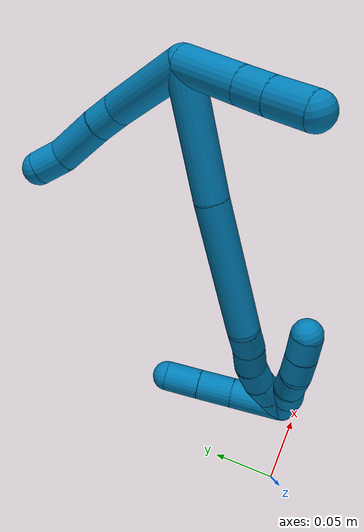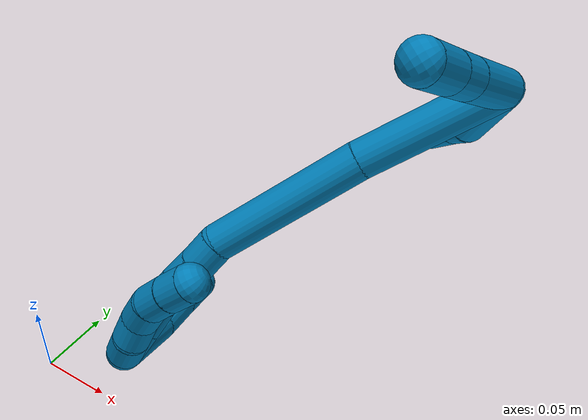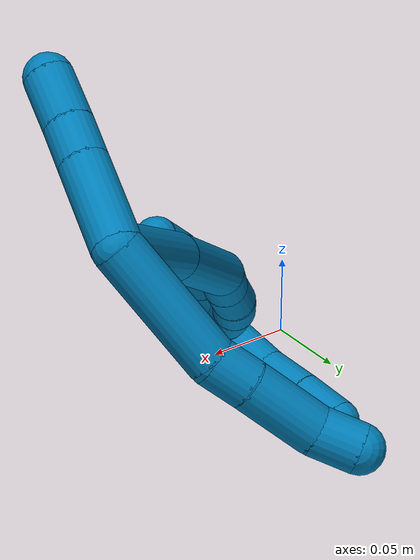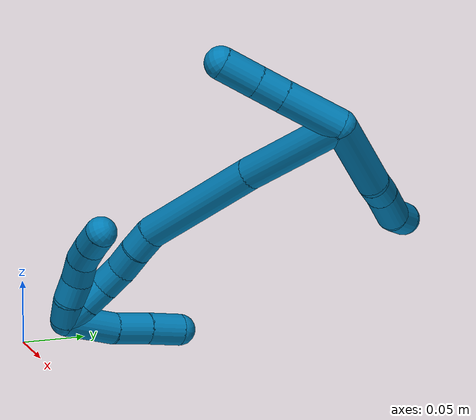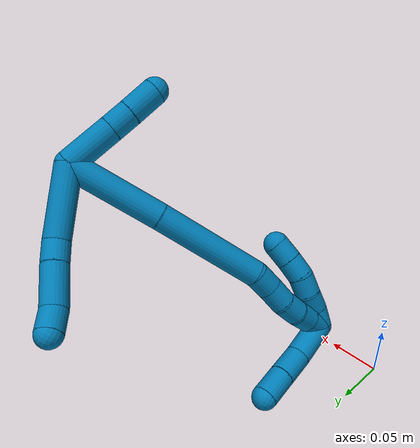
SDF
<sdf version="1.7">
 <world name="default">
  <model name="9">
   <static>0</static>
   <link name="9">
    <collision name="collision-cylinder-e_1_2_8">
     <pose>-0.002065 0.031639 -0.01232 -1.94212 -0.060742 0.088805</pose>
     <geometry><cylinder><radius>0.0125</radius><length>0.068032</length></cylinder></geometry>
     <surface>
      <friction><ode><mu>1.16</mu><mu2>1.16</mu2><slip1>0</slip1><slip2>0</slip2></ode></friction>
      <contact><ode><kp>1e+06</kp><kd>1</kd><max_vel>0</max_vel><min_depth>0.001</min_depth></ode></contact>
     </surface>
    </collision>
    <visual name="visual-cylinder-e_1_2_8">
     <pose>-0.002065 0.031639 -0.01232 -1.94212 -0.060742 0.088805</pose>
     <geometry><cylinder><radius>0.0125</radius><length>0.068032</length></cylinder></geometry>
     <material><ambient>0 0.490196 0.709804 1</ambient></material>
    </visual>
    <collision name="collision-cylinder-e_2_8_9">
     <pose>-0.007572 0.072112 -0.028696 -2.00122 -0.340336 0.523637</pose>
     <geometry><cylinder><radius>0.0125</radius><length>0.020624</length></cylinder></geometry>
     <surface>
      <friction><ode><mu>1.16</mu><mu2>1.16</mu2><slip1>0</slip1><slip2>0</slip2></ode></friction>
      <contact><ode><kp>1e+06</kp><kd>1</kd><max_vel>0</max_vel><min_depth>0.001</min_depth></ode></contact>
     </surface>
    </collision>
    <visual name="visual-cylinder-e_2_8_9">
     <pose>-0.007572 0.072112 -0.028696 -2.00122 -0.340336 0.523637</pose>
     <geometry><cylinder><radius>0.0125</radius><length>0.020624</length></cylinder></geometry>
     <material><ambient>0 0.490196 0.709804 1</ambient></material>
    </visual>
    <collision name="collision-cylinder-e_3_9_10">
     <pose>-0.016802 0.097351 -0.041533 -2.06226 -0.301548 0.496811</pose>
     <geometry><cylinder><radius>0.0125</radius><length>0.038973</length></cylinder></geometry>
     <surface>
      <friction><ode><mu>1.16</mu><mu2>1.16</mu2><slip1>0</slip1><slip2>0</slip2></ode></friction>
      <contact><ode><kp>1e+06</kp><kd>1</kd><max_vel>0</max_vel><min_depth>0.001</min_depth></ode></contact>
     </surface>
    </collision>
    <visual name="visual-cylinder-e_3_9_10">
     <pose>-0.016802 0.097351 -0.041533 -2.06226 -0.301548 0.496811</pose>
     <geometry><cylinder><radius>0.0125</radius><length>0.038973</length></cylinder></geometry>
     <material><ambient>0 0.490196 0.709804 1</ambient></material>
    </visual>
    <collision name="collision-cylinder-e_4_10_6">
     <pose>-0.028533 0.122869 -0.052913 -1.84863 -0.560194 0.728345</pose>
     <geometry><cylinder><radius>0.0125</radius><length>0.022371</length></cylinder></geometry>
     <surface>
      <friction><ode><mu>1.16</mu><mu2>1.16</mu2><slip1>0</slip1><slip2>0</slip2></ode></friction>
      <contact><ode><kp>1e+06</kp><kd>1</kd><max_vel>0</max_vel><min_depth>0.001</min_depth></ode></contact>
     </surface>
    </collision>
    <visual name="visual-cylinder-e_4_10_6">
     <pose>-0.028533 0.122869 -0.052913 -1.84863 -0.560194 0.728345</pose>
     <geometry><cylinder><radius>0.0125</radius><length>0.022371</length></cylinder></geometry>
     <material><ambient>0 0.490196 0.709804 1</ambient></material>
    </visual>
    <collision name="collision-cylinder-e_1_2_11">
     <pose>-0.00316 -0.022611 -0.007726 1.90004 -0.131499 -0.183641</pose>
     <geometry><cylinder><radius>0.0125</radius><length>0.048204</length></cylinder></geometry>
     <surface>
      <friction><ode><mu>1.16</mu><mu2>1.16</mu2><slip1>0</slip1><slip2>0</slip2></ode></friction>
      <contact><ode><kp>1e+06</kp><kd>1</kd><max_vel>0</max_vel><min_depth>0.001</min_depth></ode></contact>
     </surface>
    </collision>
    <visual name="visual-cylinder-e_1_2_11">
     <pose>-0.00316 -0.022611 -0.007726 1.90004 -0.131499 -0.183641</pose>
     <geometry><cylinder><radius>0.0125</radius><length>0.048204</length></cylinder></geometry>
     <material><ambient>0 0.490196 0.709804 1</ambient></material>
    </visual>
    <collision name="collision-cylinder-e_2_11_12">
     <pose>-0.007839 -0.055678 -0.018919 1.89098 -0.137002 -0.189494</pose>
     <geometry><cylinder><radius>0.0125</radius><length>0.022242</length></cylinder></geometry>
     <surface>
      <friction><ode><mu>1.16</mu><mu2>1.16</mu2><slip1>0</slip1><slip2>0</slip2></ode></friction>
      <contact><ode><kp>1e+06</kp><kd>1</kd><max_vel>0</max_vel><min_depth>0.001</min_depth></ode></contact>
     </surface>
    </collision>
    <visual name="visual-cylinder-e_2_11_12">
     <pose>-0.007839 -0.055678 -0.018919 1.89098 -0.137002 -0.189494</pose>
     <geometry><cylinder><radius>0.0125</radius><length>0.022242</length></cylinder></geometry>
     <material><ambient>0 0.490196 0.709804 1</ambient></material>
    </visual>
    <collision name="collision-cylinder-e_3_12_5">
     <pose>-0.011138 -0.080135 -0.026766 1.87397 -0.120767 -0.164145</pose>
     <geometry><cylinder><radius>0.0125</radius><length>0.029554</length></cylinder></geometry>
     <surface>
      <friction><ode><mu>1.16</mu><mu2>1.16</mu2><slip1>0</slip1><slip2>0</slip2></ode></friction>
      <contact><ode><kp>1e+06</kp><kd>1</kd><max_vel>0</max_vel><min_depth>0.001</min_depth></ode></contact>
     </surface>
    </collision>
    <visual name="visual-cylinder-e_3_12_5">
     <pose>-0.011138 -0.080135 -0.026766 1.87397 -0.120767 -0.164145</pose>
     <geometry><cylinder><radius>0.0125</radius><length>0.029554</length></cylinder></geometry>
     <material><ambient>0 0.490196 0.709804 1</ambient></material>
    </visual>
    <collision name="collision-cylinder-e_1_2_13">
     <pose>-0.004098 -0.00019 -0.045354 3.13741 -0.090116 -3.04886</pose>
     <geometry><cylinder><radius>0.0125</radius><length>0.091078</length></cylinder></geometry>
     <surface>
      <friction><ode><mu>1.16</mu><mu2>1.16</mu2><slip1>0</slip1><slip2>0</slip2></ode></friction>
      <contact><ode><kp>1e+06</kp><kd>1</kd><max_vel>0</max_vel><min_depth>0.001</min_depth></ode></contact>
     </surface>
    </collision>
    <visual name="visual-cylinder-e_1_2_13">
     <pose>-0.004098 -0.00019 -0.045354 3.13741 -0.090116 -3.04886</pose>
     <geometry><cylinder><radius>0.0125</radius><length>0.091078</length></cylinder></geometry>
     <material><ambient>0 0.490196 0.709804 1</ambient></material>
    </visual>
    <collision name="collision-cylinder-e_2_13_14">
     <pose>-0.009489 -0.000147 -0.143143 -3.13716 -0.024648 2.78607</pose>
     <geometry><cylinder><radius>0.0125</radius><length>0.104903</length></cylinder></geometry>
     <surface>
      <friction><ode><mu>1.16</mu><mu2>1.16</mu2><slip1>0</slip1><slip2>0</slip2></ode></friction>
      <contact><ode><kp>1e+06</kp><kd>1</kd><max_vel>0</max_vel><min_depth>0.001</min_depth></ode></contact>
     </surface>
    </collision>
    <visual name="visual-cylinder-e_2_13_14">
     <pose>-0.009489 -0.000147 -0.143143 -3.13716 -0.024648 2.78607</pose>
     <geometry><cylinder><radius>0.0125</radius><length>0.104903</length></cylinder></geometry>
     <material><ambient>0 0.490196 0.709804 1</ambient></material>
    </visual>
    <collision name="collision-cylinder-e_3_14_15">
     <pose>-0.008584 0.001878 -0.205577 -2.96418 0.213023 -1.75383</pose>
     <geometry><cylinder><radius>0.0125</radius><length>0.020788</length></cylinder></geometry>
     <surface>
      <friction><ode><mu>1.16</mu><mu2>1.16</mu2><slip1>0</slip1><slip2>0</slip2></ode></friction>
      <contact><ode><kp>1e+06</kp><kd>1</kd><max_vel>0</max_vel><min_depth>0.001</min_depth></ode></contact>
     </surface>
    </collision>
    <visual name="visual-cylinder-e_3_14_15">
     <pose>-0.008584 0.001878 -0.205577 -2.96418 0.213023 -1.75383</pose>
     <geometry><cylinder><radius>0.0125</radius><length>0.020788</length></cylinder></geometry>
     <material><ambient>0 0.490196 0.709804 1</ambient></material>
    </visual>
    <collision name="collision-cylinder-e_4_15_16">
     <pose>-0.004987 0.006357 -0.225931 -2.88771 0.13015 -0.944174</pose>
     <geometry><cylinder><radius>0.0125</radius><length>0.021577</length></cylinder></geometry>
     <surface>
      <friction><ode><mu>1.16</mu><mu2>1.16</mu2><slip1>0</slip1><slip2>0</slip2></ode></friction>
      <contact><ode><kp>1e+06</kp><kd>1</kd><max_vel>0</max_vel><min_depth>0.001</min_depth></ode></contact>
     </surface>
    </collision>
    <visual name="visual-cylinder-e_4_15_16">
     <pose>-0.004987 0.006357 -0.225931 -2.88771 0.13015 -0.944174</pose>
     <geometry><cylinder><radius>0.0125</radius><length>0.021577</length></cylinder></geometry>
     <material><ambient>0 0.490196 0.709804 1</ambient></material>
    </visual>
    <collision name="collision-cylinder-e_5_16_17">
     <pose>-0.00089 0.009651 -0.246356 -3.08145 0.26119 -2.69128</pose>
     <geometry><cylinder><radius>0.0125</radius><length>0.020888</length></cylinder></geometry>
     <surface>
      <friction><ode><mu>1.16</mu><mu2>1.16</mu2><slip1>0</slip1><slip2>0</slip2></ode></friction>
      <contact><ode><kp>1e+06</kp><kd>1</kd><max_vel>0</max_vel><min_depth>0.001</min_depth></ode></contact>
     </surface>
    </collision>
    <visual name="visual-cylinder-e_5_16_17">
     <pose>-0.00089 0.009651 -0.246356 -3.08145 0.26119 -2.69128</pose>
     <geometry><cylinder><radius>0.0125</radius><length>0.020888</length></cylinder></geometry>
     <material><ambient>0 0.490196 0.709804 1</ambient></material>
    </visual>
    <collision name="collision-cylinder-e_6_17_18">
     <pose>0.005951 0.009623 -0.265534 3.07211 0.42612 2.82301</pose>
     <geometry><cylinder><radius>0.0125</radius><length>0.02005</length></cylinder></geometry>
     <surface>
      <friction><ode><mu>1.16</mu><mu2>1.16</mu2><slip1>0</slip1><slip2>0</slip2></ode></friction>
      <contact><ode><kp>1e+06</kp><kd>1</kd><max_vel>0</max_vel><min_depth>0.001</min_depth></ode></contact>
     </surface>
    </collision>
    <visual name="visual-cylinder-e_6_17_18">
     <pose>0.005951 0.009623 -0.265534 3.07211 0.42612 2.82301</pose>
     <geometry><cylinder><radius>0.0125</radius><length>0.02005</length></cylinder></geometry>
     <material><ambient>0 0.490196 0.709804 1</ambient></material>
    </visual>
    <collision name="collision-cylinder-e_7_18_1">
     <pose>0.014339 0.008173 -0.284054 3.05504 0.422215 2.74281</pose>
     <geometry><cylinder><radius>0.0125</radius><length>0.020717</length></cylinder></geometry>
     <surface>
      <friction><ode><mu>1.16</mu><mu2>1.16</mu2><slip1>0</slip1><slip2>0</slip2></ode></friction>
      <contact><ode><kp>1e+06</kp><kd>1</kd><max_vel>0</max_vel><min_depth>0.001</min_depth></ode></contact>
     </surface>
    </collision>
    <visual name="visual-cylinder-e_7_18_1">
     <pose>0.014339 0.008173 -0.284054 3.05504 0.422215 2.74281</pose>
     <geometry><cylinder><radius>0.0125</radius><length>0.020717</length></cylinder></geometry>
     <material><ambient>0 0.490196 0.709804 1</ambient></material>
    </visual>
    <collision name="collision-cylinder-e_1_1_19">
     <pose>0.013174 0.026894 -0.2875 -1.27436 -0.258869 0.192091</pose>
     <geometry><cylinder><radius>0.0125</radius><length>0.042266</length></cylinder></geometry>
     <surface>
      <friction><ode><mu>1.16</mu><mu2>1.16</mu2><slip1>0</slip1><slip2>0</slip2></ode></friction>
      <contact><ode><kp>1e+06</kp><kd>1</kd><max_vel>0</max_vel><min_depth>0.001</min_depth></ode></contact>
     </surface>
    </collision>
    <visual name="visual-cylinder-e_1_1_19">
     <pose>0.013174 0.026894 -0.2875 -1.27436 -0.258869 0.192091</pose>
     <geometry><cylinder><radius>0.0125</radius><length>0.042266</length></cylinder></geometry>
     <material><ambient>0 0.490196 0.709804 1</ambient></material>
    </visual>
    <collision name="collision-cylinder-e_2_19_20">
     <pose>0.002647 0.05889 -0.275946 -1.14927 -0.358572 0.233636</pose>
     <geometry><cylinder><radius>0.0125</radius><length>0.029162</length></cylinder></geometry>
     <surface>
      <friction><ode><mu>1.16</mu><mu2>1.16</mu2><slip1>0</slip1><slip2>0</slip2></ode></friction>
      <contact><ode><kp>1e+06</kp><kd>1</kd><max_vel>0</max_vel><min_depth>0.001</min_depth></ode></contact>
     </surface>
    </collision>
    <visual name="visual-cylinder-e_2_19_20">
     <pose>0.002647 0.05889 -0.275946 -1.14927 -0.358572 0.233636</pose>
     <geometry><cylinder><radius>0.0125</radius><length>0.029162</length></cylinder></geometry>
     <material><ambient>0 0.490196 0.709804 1</ambient></material>
    </visual>
    <collision name="collision-cylinder-e_3_20_4">
     <pose>-0.007095 0.083792 -0.26508 -1.16953 -0.329677 0.219361</pose>
     <geometry><cylinder><radius>0.0125</radius><length>0.028572</length></cylinder></geometry>
     <surface>
      <friction><ode><mu>1.16</mu><mu2>1.16</mu2><slip1>0</slip1><slip2>0</slip2></ode></friction>
      <contact><ode><kp>1e+06</kp><kd>1</kd><max_vel>0</max_vel><min_depth>0.001</min_depth></ode></contact>
     </surface>
    </collision>
    <visual name="visual-cylinder-e_3_20_4">
     <pose>-0.007095 0.083792 -0.26508 -1.16953 -0.329677 0.219361</pose>
     <geometry><cylinder><radius>0.0125</radius><length>0.028572</length></cylinder></geometry>
     <material><ambient>0 0.490196 0.709804 1</ambient></material>
    </visual>
    <collision name="collision-cylinder-e_1_1_21">
     <pose>0.016657 0.001334 -0.285721 0.660784 -0.193957 -0.066705</pose>
     <geometry><cylinder><radius>0.0125</radius><length>0.02</length></cylinder></geometry>
     <surface>
      <friction><ode><mu>1.16</mu><mu2>1.16</mu2><slip1>0</slip1><slip2>0</slip2></ode></friction>
      <contact><ode><kp>1e+06</kp><kd>1</kd><max_vel>0</max_vel><min_depth>0.001</min_depth></ode></contact>
     </surface>
    </collision>
    <visual name="visual-cylinder-e_1_1_21">
     <pose>0.016657 0.001334 -0.285721 0.660784 -0.193957 -0.066705</pose>
     <geometry><cylinder><radius>0.0125</radius><length>0.02</length></cylinder></geometry>
     <material><ambient>0 0.490196 0.709804 1</ambient></material>
    </visual>
    <collision name="collision-cylinder-e_2_21_22">
     <pose>0.011529 -0.009014 -0.269544 0.47408 -0.325708 -0.079346</pose>
     <geometry><cylinder><radius>0.0125</radius><length>0.02</length></cylinder></geometry>
     <surface>
      <friction><ode><mu>1.16</mu><mu2>1.16</mu2><slip1>0</slip1><slip2>0</slip2></ode></friction>
      <contact><ode><kp>1e+06</kp><kd>1</kd><max_vel>0</max_vel><min_depth>0.001</min_depth></ode></contact>
     </surface>
    </collision>
    <visual name="visual-cylinder-e_2_21_22">
     <pose>0.011529 -0.009014 -0.269544 0.47408 -0.325708 -0.079346</pose>
     <geometry><cylinder><radius>0.0125</radius><length>0.02</length></cylinder></geometry>
     <material><ambient>0 0.490196 0.709804 1</ambient></material>
    </visual>
    <collision name="collision-cylinder-e_3_22_23">
     <pose>0.00695 -0.018795 -0.252849 0.583416 -0.138416 -0.041623</pose>
     <geometry><cylinder><radius>0.0125</radius><length>0.02</length></cylinder></geometry>
     <surface>
      <friction><ode><mu>1.16</mu><mu2>1.16</mu2><slip1>0</slip1><slip2>0</slip2></ode></friction>
      <contact><ode><kp>1e+06</kp><kd>1</kd><max_vel>0</max_vel><min_depth>0.001</min_depth></ode></contact>
     </surface>
    </collision>
    <visual name="visual-cylinder-e_3_22_23">
     <pose>0.00695 -0.018795 -0.252849 0.583416 -0.138416 -0.041623</pose>
     <geometry><cylinder><radius>0.0125</radius><length>0.02</length></cylinder></geometry>
     <material><ambient>0 0.490196 0.709804 1</ambient></material>
    </visual>
    <collision name="collision-cylinder-e_4_23_24">
     <pose>0.006509 -0.028297 -0.235486 0.418474 0.094041 0.019983</pose>
     <geometry><cylinder><radius>0.0125</radius><length>0.02</length></cylinder></geometry>
     <surface>
      <friction><ode><mu>1.16</mu><mu2>1.16</mu2><slip1>0</slip1><slip2>0</slip2></ode></friction>
      <contact><ode><kp>1e+06</kp><kd>1</kd><max_vel>0</max_vel><min_depth>0.001</min_depth></ode></contact>
     </surface>
    </collision>
    <visual name="visual-cylinder-e_4_23_24">
     <pose>0.006509 -0.028297 -0.235486 0.418474 0.094041 0.019983</pose>
     <geometry><cylinder><radius>0.0125</radius><length>0.02</length></cylinder></geometry>
     <material><ambient>0 0.490196 0.709804 1</ambient></material>
    </visual>
    <collision name="collision-cylinder-e_5_24_3">
     <pose>0.008703 -0.035958 -0.217151 0.373018 0.125839 0.023776</pose>
     <geometry><cylinder><radius>0.0125</radius><length>0.02</length></cylinder></geometry>
     <surface>
      <friction><ode><mu>1.16</mu><mu2>1.16</mu2><slip1>0</slip1><slip2>0</slip2></ode></friction>
      <contact><ode><kp>1e+06</kp><kd>1</kd><max_vel>0</max_vel><min_depth>0.001</min_depth></ode></contact>
     </surface>
    </collision>
    <visual name="visual-cylinder-e_5_24_3">
     <pose>0.008703 -0.035958 -0.217151 0.373018 0.125839 0.023776</pose>
     <geometry><cylinder><radius>0.0125</radius><length>0.02</length></cylinder></geometry>
     <material><ambient>0 0.490196 0.709804 1</ambient></material>
    </visual>
    <collision name="collision-sphere-3">
     <pose>0.009958 -0.039573 -0.207912 0 -0 0</pose>
     <geometry><sphere><radius>0.0125</radius></sphere></geometry>
     <surface>
      <friction><ode><mu>1.16</mu><mu2>1.16</mu2><slip1>0</slip1><slip2>0</slip2></ode></friction>
      <contact><ode><kp>1e+06</kp><kd>1</kd><max_vel>0</max_vel><min_depth>0.001</min_depth></ode></contact>
     </surface>
    </collision>
    <visual name="visual-sphere-3">
     <pose>0.009958 -0.039573 -0.207912 0 -0 0</pose>
     <geometry><sphere><radius>0.0125</radius></sphere></geometry>
     <material><ambient>0 0.490196 0.709804 1</ambient></material>
    </visual>
    <collision name="collision-sphere-24">
     <pose>0.007448 -0.032343 -0.226389 0 -0 0</pose>
     <geometry><sphere><radius>0.0125</radius></sphere></geometry>
     <surface>
      <friction><ode><mu>1.16</mu><mu2>1.16</mu2><slip1>0</slip1><slip2>0</slip2></ode></friction>
      <contact><ode><kp>1e+06</kp><kd>1</kd><max_vel>0</max_vel><min_depth>0.001</min_depth></ode></contact>
     </surface>
    </collision>
    <visual name="visual-sphere-24">
     <pose>0.007448 -0.032343 -0.226389 0 -0 0</pose>
     <geometry><sphere><radius>0.0125</radius></sphere></geometry>
     <material><ambient>0 0.490196 0.709804 1</ambient></material>
    </visual>
    <collision name="collision-sphere-23">
     <pose>0.00557 -0.024251 -0.244583 0 -0 0</pose>
     <geometry><sphere><radius>0.0125</radius></sphere></geometry>
     <surface>
      <friction><ode><mu>1.16</mu><mu2>1.16</mu2><slip1>0</slip1><slip2>0</slip2></ode></friction>
      <contact><ode><kp>1e+06</kp><kd>1</kd><max_vel>0</max_vel><min_depth>0.001</min_depth></ode></contact>
     </surface>
    </collision>
    <visual name="visual-sphere-23">
     <pose>0.00557 -0.024251 -0.244583 0 -0 0</pose>
     <geometry><sphere><radius>0.0125</radius></sphere></geometry>
     <material><ambient>0 0.490196 0.709804 1</ambient></material>
    </visual>
    <collision name="collision-sphere-22">
     <pose>0.00833 -0.013339 -0.261115 0 -0 0</pose>
     <geometry><sphere><radius>0.0125</radius></sphere></geometry>
     <surface>
      <friction><ode><mu>1.16</mu><mu2>1.16</mu2><slip1>0</slip1><slip2>0</slip2></ode></friction>
      <contact><ode><kp>1e+06</kp><kd>1</kd><max_vel>0</max_vel><min_depth>0.001</min_depth></ode></contact>
     </surface>
    </collision>
    <visual name="visual-sphere-22">
     <pose>0.00833 -0.013339 -0.261115 0 -0 0</pose>
     <geometry><sphere><radius>0.0125</radius></sphere></geometry>
     <material><ambient>0 0.490196 0.709804 1</ambient></material>
    </visual>
    <collision name="collision-sphere-21">
     <pose>0.014729 -0.004689 -0.277974 0 -0 0</pose>
     <geometry><sphere><radius>0.0125</radius></sphere></geometry>
     <surface>
      <friction><ode><mu>1.16</mu><mu2>1.16</mu2><slip1>0</slip1><slip2>0</slip2></ode></friction>
      <contact><ode><kp>1e+06</kp><kd>1</kd><max_vel>0</max_vel><min_depth>0.001</min_depth></ode></contact>
     </surface>
    </collision>
    <visual name="visual-sphere-21">
     <pose>0.014729 -0.004689 -0.277974 0 -0 0</pose>
     <geometry><sphere><radius>0.0125</radius></sphere></geometry>
     <material><ambient>0 0.490196 0.709804 1</ambient></material>
    </visual>
    <collision name="collision-sphere-4">
     <pose>-0.011719 0.096235 -0.259801 0 -0 0</pose>
     <geometry><sphere><radius>0.0125</radius></sphere></geometry>
     <surface>
      <friction><ode><mu>1.16</mu><mu2>1.16</mu2><slip1>0</slip1><slip2>0</slip2></ode></friction>
      <contact><ode><kp>1e+06</kp><kd>1</kd><max_vel>0</max_vel><min_depth>0.001</min_depth></ode></contact>
     </surface>
    </collision>
    <visual name="visual-sphere-4">
     <pose>-0.011719 0.096235 -0.259801 0 -0 0</pose>
     <geometry><sphere><radius>0.0125</radius></sphere></geometry>
     <material><ambient>0 0.490196 0.709804 1</ambient></material>
    </visual>
    <collision name="collision-sphere-20">
     <pose>-0.00247 0.071349 -0.270359 0 -0 0</pose>
     <geometry><sphere><radius>0.0125</radius></sphere></geometry>
     <surface>
      <friction><ode><mu>1.16</mu><mu2>1.16</mu2><slip1>0</slip1><slip2>0</slip2></ode></friction>
      <contact><ode><kp>1e+06</kp><kd>1</kd><max_vel>0</max_vel><min_depth>0.001</min_depth></ode></contact>
     </surface>
    </collision>
    <visual name="visual-sphere-20">
     <pose>-0.00247 0.071349 -0.270359 0 -0 0</pose>
     <geometry><sphere><radius>0.0125</radius></sphere></geometry>
     <material><ambient>0 0.490196 0.709804 1</ambient></material>
    </visual>
    <collision name="collision-sphere-11">
     <pose>-0.006321 -0.045221 -0.015451 0 -0 0</pose>
     <geometry><sphere><radius>0.0125</radius></sphere></geometry>
     <surface>
      <friction><ode><mu>1.16</mu><mu2>1.16</mu2><slip1>0</slip1><slip2>0</slip2></ode></friction>
      <contact><ode><kp>1e+06</kp><kd>1</kd><max_vel>0</max_vel><min_depth>0.001</min_depth></ode></contact>
     </surface>
    </collision>
    <visual name="visual-sphere-11">
     <pose>-0.006321 -0.045221 -0.015451 0 -0 0</pose>
     <geometry><sphere><radius>0.0125</radius></sphere></geometry>
     <material><ambient>0 0.490196 0.709804 1</ambient></material>
    </visual>
    <collision name="collision-sphere-6">
     <pose>-0.034476 0.131981 -0.055512 0 -0 0</pose>
     <geometry><sphere><radius>0.0125</radius></sphere></geometry>
     <surface>
      <friction><ode><mu>1.16</mu><mu2>1.16</mu2><slip1>0</slip1><slip2>0</slip2></ode></friction>
      <contact><ode><kp>1e+06</kp><kd>1</kd><max_vel>0</max_vel><min_depth>0.001</min_depth></ode></contact>
     </surface>
    </collision>
    <visual name="visual-sphere-6">
     <pose>-0.034476 0.131981 -0.055512 0 -0 0</pose>
     <geometry><sphere><radius>0.0125</radius></sphere></geometry>
     <material><ambient>0 0.490196 0.709804 1</ambient></material>
    </visual>
    <collision name="collision-sphere-10">
     <pose>-0.022589 0.113756 -0.050314 0 -0 0</pose>
     <geometry><sphere><radius>0.0125</radius></sphere></geometry>
     <surface>
      <friction><ode><mu>1.16</mu><mu2>1.16</mu2><slip1>0</slip1><slip2>0</slip2></ode></friction>
      <contact><ode><kp>1e+06</kp><kd>1</kd><max_vel>0</max_vel><min_depth>0.001</min_depth></ode></contact>
     </surface>
    </collision>
    <visual name="visual-sphere-10">
     <pose>-0.022589 0.113756 -0.050314 0 -0 0</pose>
     <geometry><sphere><radius>0.0125</radius></sphere></geometry>
     <material><ambient>0 0.490196 0.709804 1</ambient></material>
    </visual>
    <collision name="collision-sphere-9">
     <pose>-0.011014 0.080946 -0.032752 0 -0 0</pose>
     <geometry><sphere><radius>0.0125</radius></sphere></geometry>
     <surface>
      <friction><ode><mu>1.16</mu><mu2>1.16</mu2><slip1>0</slip1><slip2>0</slip2></ode></friction>
      <contact><ode><kp>1e+06</kp><kd>1</kd><max_vel>0</max_vel><min_depth>0.001</min_depth></ode></contact>
     </surface>
    </collision>
    <visual name="visual-sphere-9">
     <pose>-0.011014 0.080946 -0.032752 0 -0 0</pose>
     <geometry><sphere><radius>0.0125</radius></sphere></geometry>
     <material><ambient>0 0.490196 0.709804 1</ambient></material>
    </visual>
    <collision name="collision-sphere-2">
     <geometry><sphere><radius>0.0125</radius></sphere></geometry>
     <surface>
      <friction><ode><mu>1.16</mu><mu2>1.16</mu2><slip1>0</slip1><slip2>0</slip2></ode></friction>
      <contact><ode><kp>1e+06</kp><kd>1</kd><max_vel>0</max_vel><min_depth>0.001</min_depth></ode></contact>
     </surface>
    </collision>
    <visual name="visual-sphere-2">
     <geometry><sphere><radius>0.0125</radius></sphere></geometry>
     <material><ambient>0 0.490196 0.709804 1</ambient></material>
    </visual>
    <collision name="collision-sphere-19">
     <pose>0.007765 0.046432 -0.281533 0 -0 0</pose>
     <geometry><sphere><radius>0.0125</radius></sphere></geometry>
     <surface>
      <friction><ode><mu>1.16</mu><mu2>1.16</mu2><slip1>0</slip1><slip2>0</slip2></ode></friction>
      <contact><ode><kp>1e+06</kp><kd>1</kd><max_vel>0</max_vel><min_depth>0.001</min_depth></ode></contact>
     </surface>
    </collision>
    <visual name="visual-sphere-19">
     <pose>0.007765 0.046432 -0.281533 0 -0 0</pose>
     <geometry><sphere><radius>0.0125</radius></sphere></geometry>
     <material><ambient>0 0.490196 0.709804 1</ambient></material>
    </visual>
    <collision name="collision-sphere-8">
     <pose>-0.00413 0.063278 -0.02464 0 -0 0</pose>
     <geometry><sphere><radius>0.0125</radius></sphere></geometry>
     <surface>
      <friction><ode><mu>1.16</mu><mu2>1.16</mu2><slip1>0</slip1><slip2>0</slip2></ode></friction>
      <contact><ode><kp>1e+06</kp><kd>1</kd><max_vel>0</max_vel><min_depth>0.001</min_depth></ode></contact>
     </surface>
    </collision>
    <visual name="visual-sphere-8">
     <pose>-0.00413 0.063278 -0.02464 0 -0 0</pose>
     <geometry><sphere><radius>0.0125</radius></sphere></geometry>
     <material><ambient>0 0.490196 0.709804 1</ambient></material>
    </visual>
    <collision name="collision-sphere-12">
     <pose>-0.009358 -0.066135 -0.022386 0 -0 0</pose>
     <geometry><sphere><radius>0.0125</radius></sphere></geometry>
     <surface>
      <friction><ode><mu>1.16</mu><mu2>1.16</mu2><slip1>0</slip1><slip2>0</slip2></ode></friction>
      <contact><ode><kp>1e+06</kp><kd>1</kd><max_vel>0</max_vel><min_depth>0.001</min_depth></ode></contact>
     </surface>
    </collision>
    <visual name="visual-sphere-12">
     <pose>-0.009358 -0.066135 -0.022386 0 -0 0</pose>
     <geometry><sphere><radius>0.0125</radius></sphere></geometry>
     <material><ambient>0 0.490196 0.709804 1</ambient></material>
    </visual>
    <collision name="collision-sphere-5">
     <pose>-0.012919 -0.094136 -0.031145 0 -0 0</pose>
     <geometry><sphere><radius>0.0125</radius></sphere></geometry>
     <surface>
      <friction><ode><mu>1.16</mu><mu2>1.16</mu2><slip1>0</slip1><slip2>0</slip2></ode></friction>
      <contact><ode><kp>1e+06</kp><kd>1</kd><max_vel>0</max_vel><min_depth>0.001</min_depth></ode></contact>
     </surface>
    </collision>
    <visual name="visual-sphere-5">
     <pose>-0.012919 -0.094136 -0.031145 0 -0 0</pose>
     <geometry><sphere><radius>0.0125</radius></sphere></geometry>
     <material><ambient>0 0.490196 0.709804 1</ambient></material>
    </visual>
    <collision name="collision-sphere-13">
     <pose>-0.008197 -0.00038 -0.090708 0 -0 0</pose>
     <geometry><sphere><radius>0.0125</radius></sphere></geometry>
     <surface>
      <friction><ode><mu>1.16</mu><mu2>1.16</mu2><slip1>0</slip1><slip2>0</slip2></ode></friction>
      <contact><ode><kp>1e+06</kp><kd>1</kd><max_vel>0</max_vel><min_depth>0.001</min_depth></ode></contact>
     </surface>
    </collision>
    <visual name="visual-sphere-13">
     <pose>-0.008197 -0.00038 -0.090708 0 -0 0</pose>
     <geometry><sphere><radius>0.0125</radius></sphere></geometry>
     <material><ambient>0 0.490196 0.709804 1</ambient></material>
    </visual>
    <collision name="collision-sphere-14">
     <pose>-0.010782 8.5e-05 -0.195578 0 -0 0</pose>
     <geometry><sphere><radius>0.0125</radius></sphere></geometry>
     <surface>
      <friction><ode><mu>1.16</mu><mu2>1.16</mu2><slip1>0</slip1><slip2>0</slip2></ode></friction>
      <contact><ode><kp>1e+06</kp><kd>1</kd><max_vel>0</max_vel><min_depth>0.001</min_depth></ode></contact>
     </surface>
    </collision>
    <visual name="visual-sphere-14">
     <pose>-0.010782 8.5e-05 -0.195578 0 -0 0</pose>
     <geometry><sphere><radius>0.0125</radius></sphere></geometry>
     <material><ambient>0 0.490196 0.709804 1</ambient></material>
    </visual>
    <collision name="collision-sphere-15">
     <pose>-0.006387 0.003671 -0.215576 0 -0 0</pose>
     <geometry><sphere><radius>0.0125</radius></sphere></geometry>
     <surface>
      <friction><ode><mu>1.16</mu><mu2>1.16</mu2><slip1>0</slip1><slip2>0</slip2></ode></friction>
      <contact><ode><kp>1e+06</kp><kd>1</kd><max_vel>0</max_vel><min_depth>0.001</min_depth></ode></contact>
     </surface>
    </collision>
    <visual name="visual-sphere-15">
     <pose>-0.006387 0.003671 -0.215576 0 -0 0</pose>
     <geometry><sphere><radius>0.0125</radius></sphere></geometry>
     <material><ambient>0 0.490196 0.709804 1</ambient></material>
    </visual>
    <collision name="collision-sphere-16">
     <pose>-0.003587 0.009044 -0.236285 0 -0 0</pose>
     <geometry><sphere><radius>0.0125</radius></sphere></geometry>
     <surface>
      <friction><ode><mu>1.16</mu><mu2>1.16</mu2><slip1>0</slip1><slip2>0</slip2></ode></friction>
      <contact><ode><kp>1e+06</kp><kd>1</kd><max_vel>0</max_vel><min_depth>0.001</min_depth></ode></contact>
     </surface>
    </collision>
    <visual name="visual-sphere-16">
     <pose>-0.003587 0.009044 -0.236285 0 -0 0</pose>
     <geometry><sphere><radius>0.0125</radius></sphere></geometry>
     <material><ambient>0 0.490196 0.709804 1</ambient></material>
    </visual>
    <collision name="collision-sphere-17">
     <pose>0.001807 0.010257 -0.256428 0 -0 0</pose>
     <geometry><sphere><radius>0.0125</radius></sphere></geometry>
     <surface>
      <friction><ode><mu>1.16</mu><mu2>1.16</mu2><slip1>0</slip1><slip2>0</slip2></ode></friction>
      <contact><ode><kp>1e+06</kp><kd>1</kd><max_vel>0</max_vel><min_depth>0.001</min_depth></ode></contact>
     </surface>
    </collision>
    <visual name="visual-sphere-17">
     <pose>0.001807 0.010257 -0.256428 0 -0 0</pose>
     <geometry><sphere><radius>0.0125</radius></sphere></geometry>
     <material><ambient>0 0.490196 0.709804 1</ambient></material>
    </visual>
    <collision name="collision-sphere-18">
     <pose>0.010095 0.00899 -0.274641 0 -0 0</pose>
     <geometry><sphere><radius>0.0125</radius></sphere></geometry>
     <surface>
      <friction><ode><mu>1.16</mu><mu2>1.16</mu2><slip1>0</slip1><slip2>0</slip2></ode></friction>
      <contact><ode><kp>1e+06</kp><kd>1</kd><max_vel>0</max_vel><min_depth>0.001</min_depth></ode></contact>
     </surface>
    </collision>
    <visual name="visual-sphere-18">
     <pose>0.010095 0.00899 -0.274641 0 -0 0</pose>
     <geometry><sphere><radius>0.0125</radius></sphere></geometry>
     <material><ambient>0 0.490196 0.709804 1</ambient></material>
    </visual>
    <collision name="collision-sphere-1">
     <pose>0.018584 0.007356 -0.293468 0 -0 0</pose>
     <geometry><sphere><radius>0.0125</radius></sphere></geometry>
     <surface>
      <friction><ode><mu>1.16</mu><mu2>1.16</mu2><slip1>0</slip1><slip2>0</slip2></ode></friction>
      <contact><ode><kp>1e+06</kp><kd>1</kd><max_vel>0</max_vel><min_depth>0.001</min_depth></ode></contact>
     </surface>
    </collision>
    <visual name="visual-sphere-1">
     <pose>0.018584 0.007356 -0.293468 0 -0 0</pose>
     <geometry><sphere><radius>0.0125</radius></sphere></geometry>
     <material><ambient>0 0.490196 0.709804 1</ambient></material>
    </visual>
    <inertial>
     <pose>-0.002752 0.012836 -0.137938 0 -0 0</pose>
     <mass>0.75</mass>
     <inertia>
      <ixx>-6.3e-05</ixx>
      <ixy>0</ixy>
      <ixz>0</ixz>
      <iyy>0.000199</iyy>
      <iyz>0</iyz>
      <izz>-3.2e-05</izz>
     </inertia>
    </inertial>
   </link>
   <pose>0.232459 0.177645 0.208895 -0.843828 0.590145 -0.403922</pose>
  </model>
 </world>
</sdf>
